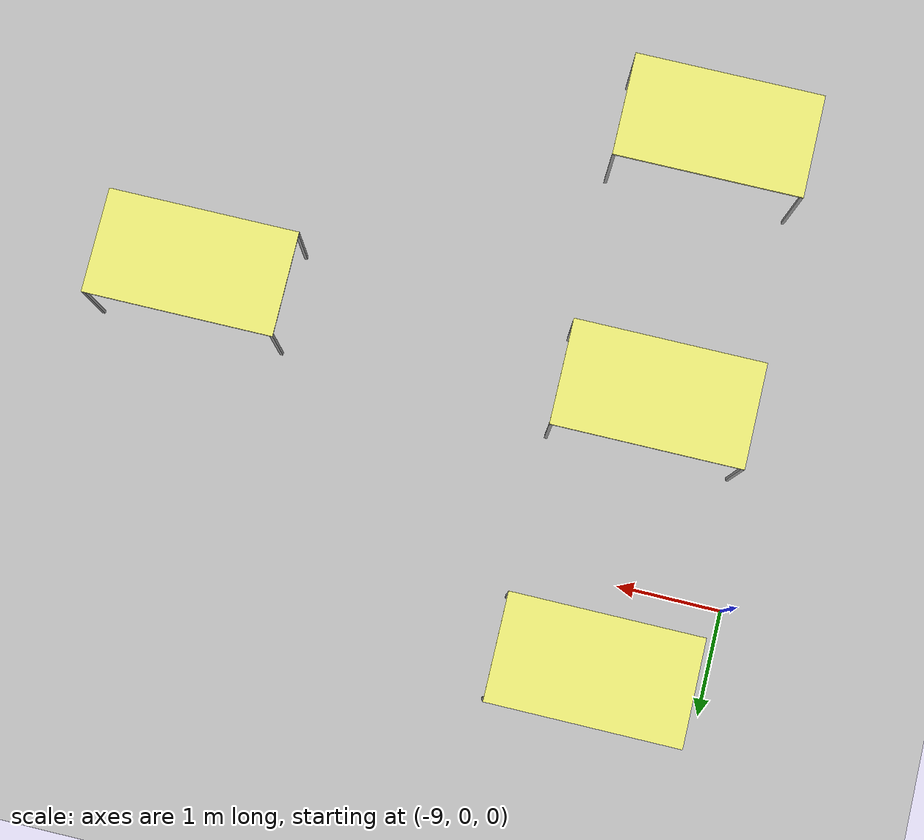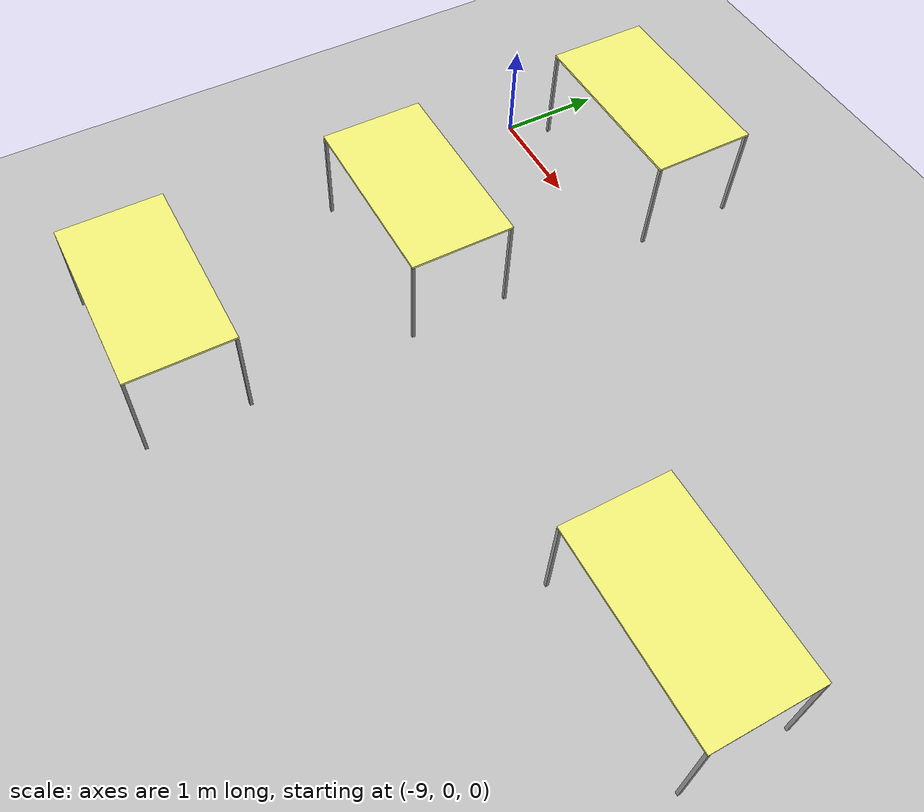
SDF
<sdf version="1.6">
 <world name="default">
  <model name="ground_plane">
   <static>1</static>
   <link name="link">
    <collision name="collision">
     <geometry><plane><normal>0 0 1</normal><size>100 100</size></plane></geometry>
     <surface><friction><ode><mu>100</mu><mu2>50</mu2></ode></friction></surface>
    </collision>
    <visual name="visual">
     <cast_shadows>0</cast_shadows>
     <geometry><plane><normal>0 0 1</normal><size>100 100</size></plane></geometry>
     <material>
      <script><uri>file://media/materials/scripts/gazebo.material</uri><name>Gazebo/Grey</name></script>
     </material>
    </visual>
   </link>
  </model>
  <model name="custom_table">
   <link name="link_0">
    <pose>-1e-06 0 0.4 0 -0 0</pose>
    <inertial>
     <mass>1</mass>
     <inertia>
      <ixx>0.166667</ixx>
      <ixy>0</ixy>
      <ixz>0</ixz>
      <iyy>0.166667</iyy>
      <iyz>0</iyz>
      <izz>0.166667</izz>
     </inertia>
    </inertial>
    <visual name="visual">
     <geometry><box><size>1.8 1 0.02</size></box></geometry>
     <material>
      <lighting>1</lighting>
      <script><uri>file://media/materials/scripts/gazebo.material</uri><name>Gazebo/Grey</name></script>
      <shader type="pixel"><normal_map>__default__</normal_map></shader>
      <ambient>0.4 0.4 0.4 0.5</ambient>
      <diffuse>1 1 0.5 1</diffuse>
      <specular>0.4 0.4 0.4 1</specular>
      <emissive>0 0 0 1</emissive>
     </material>
    </visual>
    <collision name="collision">
     <geometry><box><size>1.8 1 0.02</size></box></geometry>
     <surface>
      <friction>
       <ode><mu>1</mu><mu2>1</mu2><fdir1>0 0 0</fdir1><slip1>0</slip1><slip2>0</slip2></ode>
       <torsional>
        <coefficient>1</coefficient>
        <patch_radius>0</patch_radius>
        <surface_radius>0</surface_radius>
        <use_patch_radius>1</use_patch_radius>
        <ode><slip>0</slip></ode>
       </torsional>
      </friction>
      <bounce><restitution_coefficient>0</restitution_coefficient><threshold>1e+06</threshold></bounce>
      <contact>
       <collide_without_contact>0</collide_without_contact>
       <collide_without_contact_bitmask>1</collide_without_contact_bitmask>
       <collide_bitmask>1</collide_bitmask>
       <ode>
        <soft_cfm>0</soft_cfm>
        <soft_erp>0.2</soft_erp>
        <kp>1e+13</kp>
        <kd>1</kd>
        <max_vel>0.01</max_vel>
        <min_depth>0</min_depth>
       </ode>
       <bullet>
        <split_impulse>1</split_impulse>
        <split_impulse_penetration_threshold>-0.01</split_impulse_penetration_threshold>
        <soft_cfm>0</soft_cfm>
        <soft_erp>0.2</soft_erp>
        <kp>1e+13</kp>
        <kd>1</kd>
       </bullet>
      </contact>
     </surface>
    </collision>
   </link>
   <link name="link_1_clone">
    <pose>0.884999 -0.485 -0.1 0 -0 0</pose>
    <inertial>
     <mass>1</mass>
     <inertia>
      <ixx>0.166667</ixx>
      <ixy>0</ixy>
      <ixz>0</ixz>
      <iyy>0.166667</iyy>
      <iyz>0</iyz>
      <izz>0.166667</izz>
     </inertia>
    </inertial>
    <visual name="visual">
     <geometry><box><size>0.03 0.03 0.98</size></box></geometry>
     <material>
      <lighting>1</lighting>
      <script><uri>file://media/materials/scripts/gazebo.material</uri><name>Gazebo/Grey</name></script>
      <shader type="pixel"><normal_map>__default__</normal_map></shader>
      <ambient>0.3 0.3 0.3 1</ambient>
      <diffuse>0.7 0.7 0.7 1</diffuse>
      <specular>0.01 0.01 0.01 1</specular>
      <emissive>0 0 0 1</emissive>
     </material>
    </visual>
    <collision name="collision">
     <geometry><box><size>0.03 0.03 0.98</size></box></geometry>
     <surface>
      <friction>
       <ode><mu>1</mu><mu2>1</mu2><fdir1>0 0 0</fdir1><slip1>0</slip1><slip2>0</slip2></ode>
       <torsional>
        <coefficient>1</coefficient>
        <patch_radius>0</patch_radius>
        <surface_radius>0</surface_radius>
        <use_patch_radius>1</use_patch_radius>
        <ode><slip>0</slip></ode>
       </torsional>
      </friction>
      <bounce><restitution_coefficient>0</restitution_coefficient><threshold>1e+06</threshold></bounce>
      <contact>
       <collide_without_contact>0</collide_without_contact>
       <collide_without_contact_bitmask>1</collide_without_contact_bitmask>
       <collide_bitmask>1</collide_bitmask>
       <ode>
        <soft_cfm>0</soft_cfm>
        <soft_erp>0.2</soft_erp>
        <kp>1e+13</kp>
        <kd>1</kd>
        <max_vel>0.01</max_vel>
        <min_depth>0</min_depth>
       </ode>
       <bullet>
        <split_impulse>1</split_impulse>
        <split_impulse_penetration_threshold>-0.01</split_impulse_penetration_threshold>
        <soft_cfm>0</soft_cfm>
        <soft_erp>0.2</soft_erp>
        <kp>1e+13</kp>
        <kd>1</kd>
       </bullet>
      </contact>
     </surface>
    </collision>
   </link>
   <link name="link_1_clone_0">
    <pose>-0.885001 0.485 -0.1 0 -0 0</pose>
    <inertial>
     <mass>1</mass>
     <inertia>
      <ixx>0.166667</ixx>
      <ixy>0</ixy>
      <ixz>0</ixz>
      <iyy>0.166667</iyy>
      <iyz>0</iyz>
      <izz>0.166667</izz>
     </inertia>
    </inertial>
    <visual name="visual">
     <geometry><box><size>0.03 0.03 0.98</size></box></geometry>
     <material>
      <lighting>1</lighting>
      <script><uri>file://media/materials/scripts/gazebo.material</uri><name>Gazebo/Grey</name></script>
      <shader type="pixel"><normal_map>__default__</normal_map></shader>
      <ambient>0.3 0.3 0.3 1</ambient>
      <diffuse>0.7 0.7 0.7 1</diffuse>
      <specular>0.01 0.01 0.01 1</specular>
      <emissive>0 0 0 1</emissive>
     </material>
    </visual>
    <collision name="collision">
     <geometry><box><size>0.03 0.03 0.98</size></box></geometry>
     <surface>
      <friction>
       <ode><mu>1</mu><mu2>1</mu2><fdir1>0 0 0</fdir1><slip1>0</slip1><slip2>0</slip2></ode>
       <torsional>
        <coefficient>1</coefficient>
        <patch_radius>0</patch_radius>
        <surface_radius>0</surface_radius>
        <use_patch_radius>1</use_patch_radius>
        <ode><slip>0</slip></ode>
       </torsional>
      </friction>
      <bounce><restitution_coefficient>0</restitution_coefficient><threshold>1e+06</threshold></bounce>
      <contact>
       <collide_without_contact>0</collide_without_contact>
       <collide_without_contact_bitmask>1</collide_without_contact_bitmask>
       <collide_bitmask>1</collide_bitmask>
       <ode>
        <soft_cfm>0</soft_cfm>
        <soft_erp>0.2</soft_erp>
        <kp>1e+13</kp>
        <kd>1</kd>
        <max_vel>0.01</max_vel>
        <min_depth>0</min_depth>
       </ode>
       <bullet>
        <split_impulse>1</split_impulse>
        <split_impulse_penetration_threshold>-0.01</split_impulse_penetration_threshold>
        <soft_cfm>0</soft_cfm>
        <soft_erp>0.2</soft_erp>
        <kp>1e+13</kp>
        <kd>1</kd>
       </bullet>
      </contact>
     </surface>
    </collision>
   </link>
   <link name="link_1_clone_clone">
    <pose>0.884999 0.485 -0.1 0 -0 0</pose>
    <inertial>
     <mass>1</mass>
     <inertia>
      <ixx>0.166667</ixx>
      <ixy>0</ixy>
      <ixz>0</ixz>
      <iyy>0.166667</iyy>
      <iyz>0</iyz>
      <izz>0.166667</izz>
     </inertia>
    </inertial>
    <visual name="visual">
     <geometry><box><size>0.03 0.03 0.98</size></box></geometry>
     <material>
      <lighting>1</lighting>
      <script><uri>file://media/materials/scripts/gazebo.material</uri><name>Gazebo/Grey</name></script>
      <shader type="pixel"><normal_map>__default__</normal_map></shader>
      <ambient>0.3 0.3 0.3 1</ambient>
      <diffuse>0.7 0.7 0.7 1</diffuse>
      <specular>0.01 0.01 0.01 1</specular>
      <emissive>0 0 0 1</emissive>
     </material>
    </visual>
    <collision name="collision">
     <geometry><box><size>0.03 0.03 0.98</size></box></geometry>
     <surface>
      <friction>
       <ode><mu>1</mu><mu2>1</mu2><fdir1>0 0 0</fdir1><slip1>0</slip1><slip2>0</slip2></ode>
       <torsional>
        <coefficient>1</coefficient>
        <patch_radius>0</patch_radius>
        <surface_radius>0</surface_radius>
        <use_patch_radius>1</use_patch_radius>
        <ode><slip>0</slip></ode>
       </torsional>
      </friction>
      <bounce><restitution_coefficient>0</restitution_coefficient><threshold>1e+06</threshold></bounce>
      <contact>
       <collide_without_contact>0</collide_without_contact>
       <collide_without_contact_bitmask>1</collide_without_contact_bitmask>
       <collide_bitmask>1</collide_bitmask>
       <ode>
        <soft_cfm>0</soft_cfm>
        <soft_erp>0.2</soft_erp>
        <kp>1e+13</kp>
        <kd>1</kd>
        <max_vel>0.01</max_vel>
        <min_depth>0</min_depth>
       </ode>
       <bullet>
        <split_impulse>1</split_impulse>
        <split_impulse_penetration_threshold>-0.01</split_impulse_penetration_threshold>
        <soft_cfm>0</soft_cfm>
        <soft_erp>0.2</soft_erp>
        <kp>1e+13</kp>
        <kd>1</kd>
       </bullet>
      </contact>
     </surface>
    </collision>
   </link>
   <link name="link_1_clone_clone_0">
    <pose>-0.885001 -0.485 -0.1 0 -0 0</pose>
    <inertial>
     <mass>1</mass>
     <inertia>
      <ixx>0.166667</ixx>
      <ixy>0</ixy>
      <ixz>0</ixz>
      <iyy>0.166667</iyy>
      <iyz>0</iyz>
      <izz>0.166667</izz>
     </inertia>
    </inertial>
    <visual name="visual">
     <geometry><box><size>0.03 0.03 0.98</size></box></geometry>
     <material>
      <lighting>1</lighting>
      <script><uri>file://media/materials/scripts/gazebo.material</uri><name>Gazebo/Grey</name></script>
      <shader type="pixel"><normal_map>__default__</normal_map></shader>
      <ambient>0.3 0.3 0.3 1</ambient>
      <diffuse>0.7 0.7 0.7 1</diffuse>
      <specular>0.01 0.01 0.01 1</specular>
      <emissive>0 0 0 1</emissive>
     </material>
    </visual>
    <collision name="collision">
     <geometry><box><size>0.03 0.03 0.98</size></box></geometry>
     <surface>
      <friction>
       <ode><mu>1</mu><mu2>1</mu2><fdir1>0 0 0</fdir1><slip1>0</slip1><slip2>0</slip2></ode>
       <torsional>
        <coefficient>1</coefficient>
        <patch_radius>0</patch_radius>
        <surface_radius>0</surface_radius>
        <use_patch_radius>1</use_patch_radius>
        <ode><slip>0</slip></ode>
       </torsional>
      </friction>
      <bounce><restitution_coefficient>0</restitution_coefficient><threshold>1e+06</threshold></bounce>
      <contact>
       <collide_without_contact>0</collide_without_contact>
       <collide_without_contact_bitmask>1</collide_without_contact_bitmask>
       <collide_bitmask>1</collide_bitmask>
       <ode>
        <soft_cfm>0</soft_cfm>
        <soft_erp>0.2</soft_erp>
        <kp>1e+13</kp>
        <kd>1</kd>
        <max_vel>0.01</max_vel>
        <min_depth>0</min_depth>
       </ode>
       <bullet>
        <split_impulse>1</split_impulse>
        <split_impulse_penetration_threshold>-0.01</split_impulse_penetration_threshold>
        <soft_cfm>0</soft_cfm>
        <soft_erp>0.2</soft_erp>
        <kp>1e+13</kp>
        <kd>1</kd>
       </bullet>
      </contact>
     </surface>
    </collision>
   </link>
   <joint name="link_0_JOINT_0" type="fixed">
    <parent>link_0</parent>
    <child>link_1_clone</child>
    <physics>
     <ode><limit><cfm>0</cfm><erp>0.2</erp></limit><suspension><cfm>0</cfm><erp>0.2</erp></suspension></ode>
    </physics>
   </joint>
   <joint name="link_0_JOINT_1" type="fixed">
    <parent>link_0</parent>
    <child>link_1_clone_0</child>
    <physics>
     <ode><limit><cfm>0</cfm><erp>0.2</erp></limit><suspension><cfm>0</cfm><erp>0.2</erp></suspension></ode>
    </physics>
   </joint>
   <joint name="link_0_JOINT_2" type="fixed">
    <parent>link_0</parent>
    <child>link_1_clone_clone</child>
    <physics>
     <ode><limit><cfm>0</cfm><erp>0.2</erp></limit><suspension><cfm>0</cfm><erp>0.2</erp></suspension></ode>
    </physics>
   </joint>
   <joint name="link_0_JOINT_3" type="fixed">
    <parent>link_0</parent>
    <child>link_1_clone_clone_0</child>
    <physics>
     <ode><limit><cfm>0</cfm><erp>0.2</erp></limit><suspension><cfm>0</cfm><erp>0.2</erp></suspension></ode>
    </physics>
   </joint>
   <static>1</static>
   <pose>-7.89321 0.822776 0.6 0 -0 0</pose>
  </model>
  <model name="custom_table_clone">
   <link name="link_0">
    <pose>-1e-06 0 0.4 0 -0 0</pose>
    <inertial>
     <mass>1</mass>
     <inertia>
      <ixx>0.166667</ixx>
      <ixy>0</ixy>
      <ixz>0</ixz>
      <iyy>0.166667</iyy>
      <iyz>0</iyz>
      <izz>0.166667</izz>
     </inertia>
    </inertial>
    <visual name="visual">
     <geometry><box><size>1.8 1 0.02</size></box></geometry>
     <material>
      <lighting>1</lighting>
      <script><uri>file://media/materials/scripts/gazebo.material</uri><name>Gazebo/Grey</name></script>
      <shader type="pixel"><normal_map>__default__</normal_map></shader>
      <ambient>0.4 0.4 0.4 0.5</ambient>
      <diffuse>1 1 0.5 1</diffuse>
      <specular>0.4 0.4 0.4 1</specular>
      <emissive>0 0 0 1</emissive>
     </material>
    </visual>
    <collision name="collision">
     <geometry><box><size>1.8 1 0.02</size></box></geometry>
     <surface>
      <friction>
       <ode><mu>1</mu><mu2>1</mu2><fdir1>0 0 0</fdir1><slip1>0</slip1><slip2>0</slip2></ode>
       <torsional>
        <coefficient>1</coefficient>
        <patch_radius>0</patch_radius>
        <surface_radius>0</surface_radius>
        <use_patch_radius>1</use_patch_radius>
        <ode><slip>0</slip></ode>
       </torsional>
      </friction>
      <bounce><restitution_coefficient>0</restitution_coefficient><threshold>1e+06</threshold></bounce>
      <contact>
       <collide_without_contact>0</collide_without_contact>
       <collide_without_contact_bitmask>1</collide_without_contact_bitmask>
       <collide_bitmask>1</collide_bitmask>
       <ode>
        <soft_cfm>0</soft_cfm>
        <soft_erp>0.2</soft_erp>
        <kp>1e+13</kp>
        <kd>1</kd>
        <max_vel>0.01</max_vel>
        <min_depth>0</min_depth>
       </ode>
       <bullet>
        <split_impulse>1</split_impulse>
        <split_impulse_penetration_threshold>-0.01</split_impulse_penetration_threshold>
        <soft_cfm>0</soft_cfm>
        <soft_erp>0.2</soft_erp>
        <kp>1e+13</kp>
        <kd>1</kd>
       </bullet>
      </contact>
     </surface>
    </collision>
   </link>
   <link name="link_1_clone">
    <pose>0.884999 -0.485 -0.1 0 -0 0</pose>
    <inertial>
     <mass>1</mass>
     <inertia>
      <ixx>0.166667</ixx>
      <ixy>0</ixy>
      <ixz>0</ixz>
      <iyy>0.166667</iyy>
      <iyz>0</iyz>
      <izz>0.166667</izz>
     </inertia>
    </inertial>
    <visual name="visual">
     <geometry><box><size>0.03 0.03 0.98</size></box></geometry>
     <material>
      <lighting>1</lighting>
      <script><uri>file://media/materials/scripts/gazebo.material</uri><name>Gazebo/Grey</name></script>
      <shader type="pixel"><normal_map>__default__</normal_map></shader>
      <ambient>0.3 0.3 0.3 1</ambient>
      <diffuse>0.7 0.7 0.7 1</diffuse>
      <specular>0.01 0.01 0.01 1</specular>
      <emissive>0 0 0 1</emissive>
     </material>
    </visual>
    <collision name="collision">
     <geometry><box><size>0.03 0.03 0.98</size></box></geometry>
     <surface>
      <friction>
       <ode><mu>1</mu><mu2>1</mu2><fdir1>0 0 0</fdir1><slip1>0</slip1><slip2>0</slip2></ode>
       <torsional>
        <coefficient>1</coefficient>
        <patch_radius>0</patch_radius>
        <surface_radius>0</surface_radius>
        <use_patch_radius>1</use_patch_radius>
        <ode><slip>0</slip></ode>
       </torsional>
      </friction>
      <bounce><restitution_coefficient>0</restitution_coefficient><threshold>1e+06</threshold></bounce>
      <contact>
       <collide_without_contact>0</collide_without_contact>
       <collide_without_contact_bitmask>1</collide_without_contact_bitmask>
       <collide_bitmask>1</collide_bitmask>
       <ode>
        <soft_cfm>0</soft_cfm>
        <soft_erp>0.2</soft_erp>
        <kp>1e+13</kp>
        <kd>1</kd>
        <max_vel>0.01</max_vel>
        <min_depth>0</min_depth>
       </ode>
       <bullet>
        <split_impulse>1</split_impulse>
        <split_impulse_penetration_threshold>-0.01</split_impulse_penetration_threshold>
        <soft_cfm>0</soft_cfm>
        <soft_erp>0.2</soft_erp>
        <kp>1e+13</kp>
        <kd>1</kd>
       </bullet>
      </contact>
     </surface>
    </collision>
   </link>
   <link name="link_1_clone_0">
    <pose>-0.885001 0.485 -0.1 0 -0 0</pose>
    <inertial>
     <mass>1</mass>
     <inertia>
      <ixx>0.166667</ixx>
      <ixy>0</ixy>
      <ixz>0</ixz>
      <iyy>0.166667</iyy>
      <iyz>0</iyz>
      <izz>0.166667</izz>
     </inertia>
    </inertial>
    <visual name="visual">
     <geometry><box><size>0.03 0.03 0.98</size></box></geometry>
     <material>
      <lighting>1</lighting>
      <script><uri>file://media/materials/scripts/gazebo.material</uri><name>Gazebo/Grey</name></script>
      <shader type="pixel"><normal_map>__default__</normal_map></shader>
      <ambient>0.3 0.3 0.3 1</ambient>
      <diffuse>0.7 0.7 0.7 1</diffuse>
      <specular>0.01 0.01 0.01 1</specular>
      <emissive>0 0 0 1</emissive>
     </material>
    </visual>
    <collision name="collision">
     <geometry><box><size>0.03 0.03 0.98</size></box></geometry>
     <surface>
      <friction>
       <ode><mu>1</mu><mu2>1</mu2><fdir1>0 0 0</fdir1><slip1>0</slip1><slip2>0</slip2></ode>
       <torsional>
        <coefficient>1</coefficient>
        <patch_radius>0</patch_radius>
        <surface_radius>0</surface_radius>
        <use_patch_radius>1</use_patch_radius>
        <ode><slip>0</slip></ode>
       </torsional>
      </friction>
      <bounce><restitution_coefficient>0</restitution_coefficient><threshold>1e+06</threshold></bounce>
      <contact>
       <collide_without_contact>0</collide_without_contact>
       <collide_without_contact_bitmask>1</collide_without_contact_bitmask>
       <collide_bitmask>1</collide_bitmask>
       <ode>
        <soft_cfm>0</soft_cfm>
        <soft_erp>0.2</soft_erp>
        <kp>1e+13</kp>
        <kd>1</kd>
        <max_vel>0.01</max_vel>
        <min_depth>0</min_depth>
       </ode>
       <bullet>
        <split_impulse>1</split_impulse>
        <split_impulse_penetration_threshold>-0.01</split_impulse_penetration_threshold>
        <soft_cfm>0</soft_cfm>
        <soft_erp>0.2</soft_erp>
        <kp>1e+13</kp>
        <kd>1</kd>
       </bullet>
      </contact>
     </surface>
    </collision>
   </link>
   <link name="link_1_clone_clone">
    <pose>0.884999 0.485 -0.1 0 -0 0</pose>
    <inertial>
     <mass>1</mass>
     <inertia>
      <ixx>0.166667</ixx>
      <ixy>0</ixy>
      <ixz>0</ixz>
      <iyy>0.166667</iyy>
      <iyz>0</iyz>
      <izz>0.166667</izz>
     </inertia>
    </inertial>
    <visual name="visual">
     <geometry><box><size>0.03 0.03 0.98</size></box></geometry>
     <material>
      <lighting>1</lighting>
      <script><uri>file://media/materials/scripts/gazebo.material</uri><name>Gazebo/Grey</name></script>
      <shader type="pixel"><normal_map>__default__</normal_map></shader>
      <ambient>0.3 0.3 0.3 1</ambient>
      <diffuse>0.7 0.7 0.7 1</diffuse>
      <specular>0.01 0.01 0.01 1</specular>
      <emissive>0 0 0 1</emissive>
     </material>
    </visual>
    <collision name="collision">
     <geometry><box><size>0.03 0.03 0.98</size></box></geometry>
     <surface>
      <friction>
       <ode><mu>1</mu><mu2>1</mu2><fdir1>0 0 0</fdir1><slip1>0</slip1><slip2>0</slip2></ode>
       <torsional>
        <coefficient>1</coefficient>
        <patch_radius>0</patch_radius>
        <surface_radius>0</surface_radius>
        <use_patch_radius>1</use_patch_radius>
        <ode><slip>0</slip></ode>
       </torsional>
      </friction>
      <bounce><restitution_coefficient>0</restitution_coefficient><threshold>1e+06</threshold></bounce>
      <contact>
       <collide_without_contact>0</collide_without_contact>
       <collide_without_contact_bitmask>1</collide_without_contact_bitmask>
       <collide_bitmask>1</collide_bitmask>
       <ode>
        <soft_cfm>0</soft_cfm>
        <soft_erp>0.2</soft_erp>
        <kp>1e+13</kp>
        <kd>1</kd>
        <max_vel>0.01</max_vel>
        <min_depth>0</min_depth>
       </ode>
       <bullet>
        <split_impulse>1</split_impulse>
        <split_impulse_penetration_threshold>-0.01</split_impulse_penetration_threshold>
        <soft_cfm>0</soft_cfm>
        <soft_erp>0.2</soft_erp>
        <kp>1e+13</kp>
        <kd>1</kd>
       </bullet>
      </contact>
     </surface>
    </collision>
   </link>
   <link name="link_1_clone_clone_0">
    <pose>-0.885001 -0.485 -0.1 0 -0 0</pose>
    <inertial>
     <mass>1</mass>
     <inertia>
      <ixx>0.166667</ixx>
      <ixy>0</ixy>
      <ixz>0</ixz>
      <iyy>0.166667</iyy>
      <iyz>0</iyz>
      <izz>0.166667</izz>
     </inertia>
    </inertial>
    <visual name="visual">
     <geometry><box><size>0.03 0.03 0.98</size></box></geometry>
     <material>
      <lighting>1</lighting>
      <script><uri>file://media/materials/scripts/gazebo.material</uri><name>Gazebo/Grey</name></script>
      <shader type="pixel"><normal_map>__default__</normal_map></shader>
      <ambient>0.3 0.3 0.3 1</ambient>
      <diffuse>0.7 0.7 0.7 1</diffuse>
      <specular>0.01 0.01 0.01 1</specular>
      <emissive>0 0 0 1</emissive>
     </material>
    </visual>
    <collision name="collision">
     <geometry><box><size>0.03 0.03 0.98</size></box></geometry>
     <surface>
      <friction>
       <ode><mu>1</mu><mu2>1</mu2><fdir1>0 0 0</fdir1><slip1>0</slip1><slip2>0</slip2></ode>
       <torsional>
        <coefficient>1</coefficient>
        <patch_radius>0</patch_radius>
        <surface_radius>0</surface_radius>
        <use_patch_radius>1</use_patch_radius>
        <ode><slip>0</slip></ode>
       </torsional>
      </friction>
      <bounce><restitution_coefficient>0</restitution_coefficient><threshold>1e+06</threshold></bounce>
      <contact>
       <collide_without_contact>0</collide_without_contact>
       <collide_without_contact_bitmask>1</collide_without_contact_bitmask>
       <collide_bitmask>1</collide_bitmask>
       <ode>
        <soft_cfm>0</soft_cfm>
        <soft_erp>0.2</soft_erp>
        <kp>1e+13</kp>
        <kd>1</kd>
        <max_vel>0.01</max_vel>
        <min_depth>0</min_depth>
       </ode>
       <bullet>
        <split_impulse>1</split_impulse>
        <split_impulse_penetration_threshold>-0.01</split_impulse_penetration_threshold>
        <soft_cfm>0</soft_cfm>
        <soft_erp>0.2</soft_erp>
        <kp>1e+13</kp>
        <kd>1</kd>
       </bullet>
      </contact>
     </surface>
    </collision>
   </link>
   <joint name="link_0_JOINT_0" type="fixed">
    <parent>link_0</parent>
    <child>link_1_clone</child>
    <physics>
     <ode><limit><cfm>0</cfm><erp>0.2</erp></limit><suspension><cfm>0</cfm><erp>0.2</erp></suspension></ode>
    </physics>
   </joint>
   <joint name="link_0_JOINT_1" type="fixed">
    <parent>link_0</parent>
    <child>link_1_clone_0</child>
    <physics>
     <ode><limit><cfm>0</cfm><erp>0.2</erp></limit><suspension><cfm>0</cfm><erp>0.2</erp></suspension></ode>
    </physics>
   </joint>
   <joint name="link_0_JOINT_2" type="fixed">
    <parent>link_0</parent>
    <child>link_1_clone_clone</child>
    <physics>
     <ode><limit><cfm>0</cfm><erp>0.2</erp></limit><suspension><cfm>0</cfm><erp>0.2</erp></suspension></ode>
    </physics>
   </joint>
   <joint name="link_0_JOINT_3" type="fixed">
    <parent>link_0</parent>
    <child>link_1_clone_clone_0</child>
    <physics>
     <ode><limit><cfm>0</cfm><erp>0.2</erp></limit><suspension><cfm>0</cfm><erp>0.2</erp></suspension></ode>
    </physics>
   </joint>
   <static>1</static>
   <pose>-7.90954 -1.71898 0.6 0 -0 0</pose>
  </model>
  <model name="custom_table_clone_0">
   <link name="link_0">
    <pose>-1e-06 0 0.4 0 -0 0</pose>
    <inertial>
     <mass>1</mass>
     <inertia>
      <ixx>0.166667</ixx>
      <ixy>0</ixy>
      <ixz>0</ixz>
      <iyy>0.166667</iyy>
      <iyz>0</iyz>
      <izz>0.166667</izz>
     </inertia>
    </inertial>
    <visual name="visual">
     <geometry><box><size>1.8 1 0.02</size></box></geometry>
     <material>
      <lighting>1</lighting>
      <script><uri>file://media/materials/scripts/gazebo.material</uri><name>Gazebo/Grey</name></script>
      <shader type="pixel"><normal_map>__default__</normal_map></shader>
      <ambient>0.4 0.4 0.4 0.5</ambient>
      <diffuse>1 1 0.5 1</diffuse>
      <specular>0.4 0.4 0.4 1</specular>
      <emissive>0 0 0 1</emissive>
     </material>
    </visual>
    <collision name="collision">
     <geometry><box><size>1.8 1 0.02</size></box></geometry>
     <surface>
      <friction>
       <ode><mu>1</mu><mu2>1</mu2><fdir1>0 0 0</fdir1><slip1>0</slip1><slip2>0</slip2></ode>
       <torsional>
        <coefficient>1</coefficient>
        <patch_radius>0</patch_radius>
        <surface_radius>0</surface_radius>
        <use_patch_radius>1</use_patch_radius>
        <ode><slip>0</slip></ode>
       </torsional>
      </friction>
      <bounce><restitution_coefficient>0</restitution_coefficient><threshold>1e+06</threshold></bounce>
      <contact>
       <collide_without_contact>0</collide_without_contact>
       <collide_without_contact_bitmask>1</collide_without_contact_bitmask>
       <collide_bitmask>1</collide_bitmask>
       <ode>
        <soft_cfm>0</soft_cfm>
        <soft_erp>0.2</soft_erp>
        <kp>1e+13</kp>
        <kd>1</kd>
        <max_vel>0.01</max_vel>
        <min_depth>0</min_depth>
       </ode>
       <bullet>
        <split_impulse>1</split_impulse>
        <split_impulse_penetration_threshold>-0.01</split_impulse_penetration_threshold>
        <soft_cfm>0</soft_cfm>
        <soft_erp>0.2</soft_erp>
        <kp>1e+13</kp>
        <kd>1</kd>
       </bullet>
      </contact>
     </surface>
    </collision>
   </link>
   <link name="link_1_clone">
    <pose>0.884999 -0.485 -0.1 0 -0 0</pose>
    <inertial>
     <mass>1</mass>
     <inertia>
      <ixx>0.166667</ixx>
      <ixy>0</ixy>
      <ixz>0</ixz>
      <iyy>0.166667</iyy>
      <iyz>0</iyz>
      <izz>0.166667</izz>
     </inertia>
    </inertial>
    <visual name="visual">
     <geometry><box><size>0.03 0.03 0.98</size></box></geometry>
     <material>
      <lighting>1</lighting>
      <script><uri>file://media/materials/scripts/gazebo.material</uri><name>Gazebo/Grey</name></script>
      <shader type="pixel"><normal_map>__default__</normal_map></shader>
      <ambient>0.3 0.3 0.3 1</ambient>
      <diffuse>0.7 0.7 0.7 1</diffuse>
      <specular>0.01 0.01 0.01 1</specular>
      <emissive>0 0 0 1</emissive>
     </material>
    </visual>
    <collision name="collision">
     <geometry><box><size>0.03 0.03 0.98</size></box></geometry>
     <surface>
      <friction>
       <ode><mu>1</mu><mu2>1</mu2><fdir1>0 0 0</fdir1><slip1>0</slip1><slip2>0</slip2></ode>
       <torsional>
        <coefficient>1</coefficient>
        <patch_radius>0</patch_radius>
        <surface_radius>0</surface_radius>
        <use_patch_radius>1</use_patch_radius>
        <ode><slip>0</slip></ode>
       </torsional>
      </friction>
      <bounce><restitution_coefficient>0</restitution_coefficient><threshold>1e+06</threshold></bounce>
      <contact>
       <collide_without_contact>0</collide_without_contact>
       <collide_without_contact_bitmask>1</collide_without_contact_bitmask>
       <collide_bitmask>1</collide_bitmask>
       <ode>
        <soft_cfm>0</soft_cfm>
        <soft_erp>0.2</soft_erp>
        <kp>1e+13</kp>
        <kd>1</kd>
        <max_vel>0.01</max_vel>
        <min_depth>0</min_depth>
       </ode>
       <bullet>
        <split_impulse>1</split_impulse>
        <split_impulse_penetration_threshold>-0.01</split_impulse_penetration_threshold>
        <soft_cfm>0</soft_cfm>
        <soft_erp>0.2</soft_erp>
        <kp>1e+13</kp>
        <kd>1</kd>
       </bullet>
      </contact>
     </surface>
    </collision>
   </link>
   <link name="link_1_clone_0">
    <pose>-0.885001 0.485 -0.1 0 -0 0</pose>
    <inertial>
     <mass>1</mass>
     <inertia>
      <ixx>0.166667</ixx>
      <ixy>0</ixy>
      <ixz>0</ixz>
      <iyy>0.166667</iyy>
      <iyz>0</iyz>
      <izz>0.166667</izz>
     </inertia>
    </inertial>
    <visual name="visual">
     <geometry><box><size>0.03 0.03 0.98</size></box></geometry>
     <material>
      <lighting>1</lighting>
      <script><uri>file://media/materials/scripts/gazebo.material</uri><name>Gazebo/Grey</name></script>
      <shader type="pixel"><normal_map>__default__</normal_map></shader>
      <ambient>0.3 0.3 0.3 1</ambient>
      <diffuse>0.7 0.7 0.7 1</diffuse>
      <specular>0.01 0.01 0.01 1</specular>
      <emissive>0 0 0 1</emissive>
     </material>
    </visual>
    <collision name="collision">
     <geometry><box><size>0.03 0.03 0.98</size></box></geometry>
     <surface>
      <friction>
       <ode><mu>1</mu><mu2>1</mu2><fdir1>0 0 0</fdir1><slip1>0</slip1><slip2>0</slip2></ode>
       <torsional>
        <coefficient>1</coefficient>
        <patch_radius>0</patch_radius>
        <surface_radius>0</surface_radius>
        <use_patch_radius>1</use_patch_radius>
        <ode><slip>0</slip></ode>
       </torsional>
      </friction>
      <bounce><restitution_coefficient>0</restitution_coefficient><threshold>1e+06</threshold></bounce>
      <contact>
       <collide_without_contact>0</collide_without_contact>
       <collide_without_contact_bitmask>1</collide_without_contact_bitmask>
       <collide_bitmask>1</collide_bitmask>
       <ode>
        <soft_cfm>0</soft_cfm>
        <soft_erp>0.2</soft_erp>
        <kp>1e+13</kp>
        <kd>1</kd>
        <max_vel>0.01</max_vel>
        <min_depth>0</min_depth>
       </ode>
       <bullet>
        <split_impulse>1</split_impulse>
        <split_impulse_penetration_threshold>-0.01</split_impulse_penetration_threshold>
        <soft_cfm>0</soft_cfm>
        <soft_erp>0.2</soft_erp>
        <kp>1e+13</kp>
        <kd>1</kd>
       </bullet>
      </contact>
     </surface>
    </collision>
   </link>
   <link name="link_1_clone_clone">
    <pose>0.884999 0.485 -0.1 0 -0 0</pose>
    <inertial>
     <mass>1</mass>
     <inertia>
      <ixx>0.166667</ixx>
      <ixy>0</ixy>
      <ixz>0</ixz>
      <iyy>0.166667</iyy>
      <iyz>0</iyz>
      <izz>0.166667</izz>
     </inertia>
    </inertial>
    <visual name="visual">
     <geometry><box><size>0.03 0.03 0.98</size></box></geometry>
     <material>
      <lighting>1</lighting>
      <script><uri>file://media/materials/scripts/gazebo.material</uri><name>Gazebo/Grey</name></script>
      <shader type="pixel"><normal_map>__default__</normal_map></shader>
      <ambient>0.3 0.3 0.3 1</ambient>
      <diffuse>0.7 0.7 0.7 1</diffuse>
      <specular>0.01 0.01 0.01 1</specular>
      <emissive>0 0 0 1</emissive>
     </material>
    </visual>
    <collision name="collision">
     <geometry><box><size>0.03 0.03 0.98</size></box></geometry>
     <surface>
      <friction>
       <ode><mu>1</mu><mu2>1</mu2><fdir1>0 0 0</fdir1><slip1>0</slip1><slip2>0</slip2></ode>
       <torsional>
        <coefficient>1</coefficient>
        <patch_radius>0</patch_radius>
        <surface_radius>0</surface_radius>
        <use_patch_radius>1</use_patch_radius>
        <ode><slip>0</slip></ode>
       </torsional>
      </friction>
      <bounce><restitution_coefficient>0</restitution_coefficient><threshold>1e+06</threshold></bounce>
      <contact>
       <collide_without_contact>0</collide_without_contact>
       <collide_without_contact_bitmask>1</collide_without_contact_bitmask>
       <collide_bitmask>1</collide_bitmask>
       <ode>
        <soft_cfm>0</soft_cfm>
        <soft_erp>0.2</soft_erp>
        <kp>1e+13</kp>
        <kd>1</kd>
        <max_vel>0.01</max_vel>
        <min_depth>0</min_depth>
       </ode>
       <bullet>
        <split_impulse>1</split_impulse>
        <split_impulse_penetration_threshold>-0.01</split_impulse_penetration_threshold>
        <soft_cfm>0</soft_cfm>
        <soft_erp>0.2</soft_erp>
        <kp>1e+13</kp>
        <kd>1</kd>
       </bullet>
      </contact>
     </surface>
    </collision>
   </link>
   <link name="link_1_clone_clone_0">
    <pose>-0.885001 -0.485 -0.1 0 -0 0</pose>
    <inertial>
     <mass>1</mass>
     <inertia>
      <ixx>0.166667</ixx>
      <ixy>0</ixy>
      <ixz>0</ixz>
      <iyy>0.166667</iyy>
      <iyz>0</iyz>
      <izz>0.166667</izz>
     </inertia>
    </inertial>
    <visual name="visual">
     <geometry><box><size>0.03 0.03 0.98</size></box></geometry>
     <material>
      <lighting>1</lighting>
      <script><uri>file://media/materials/scripts/gazebo.material</uri><name>Gazebo/Grey</name></script>
      <shader type="pixel"><normal_map>__default__</normal_map></shader>
      <ambient>0.3 0.3 0.3 1</ambient>
      <diffuse>0.7 0.7 0.7 1</diffuse>
      <specular>0.01 0.01 0.01 1</specular>
      <emissive>0 0 0 1</emissive>
     </material>
    </visual>
    <collision name="collision">
     <geometry><box><size>0.03 0.03 0.98</size></box></geometry>
     <surface>
      <friction>
       <ode><mu>1</mu><mu2>1</mu2><fdir1>0 0 0</fdir1><slip1>0</slip1><slip2>0</slip2></ode>
       <torsional>
        <coefficient>1</coefficient>
        <patch_radius>0</patch_radius>
        <surface_radius>0</surface_radius>
        <use_patch_radius>1</use_patch_radius>
        <ode><slip>0</slip></ode>
       </torsional>
      </friction>
      <bounce><restitution_coefficient>0</restitution_coefficient><threshold>1e+06</threshold></bounce>
      <contact>
       <collide_without_contact>0</collide_without_contact>
       <collide_without_contact_bitmask>1</collide_without_contact_bitmask>
       <collide_bitmask>1</collide_bitmask>
       <ode>
        <soft_cfm>0</soft_cfm>
        <soft_erp>0.2</soft_erp>
        <kp>1e+13</kp>
        <kd>1</kd>
        <max_vel>0.01</max_vel>
        <min_depth>0</min_depth>
       </ode>
       <bullet>
        <split_impulse>1</split_impulse>
        <split_impulse_penetration_threshold>-0.01</split_impulse_penetration_threshold>
        <soft_cfm>0</soft_cfm>
        <soft_erp>0.2</soft_erp>
        <kp>1e+13</kp>
        <kd>1</kd>
       </bullet>
      </contact>
     </surface>
    </collision>
   </link>
   <joint name="link_0_JOINT_0" type="fixed">
    <parent>link_0</parent>
    <child>link_1_clone</child>
    <physics>
     <ode><limit><cfm>0</cfm><erp>0.2</erp></limit><suspension><cfm>0</cfm><erp>0.2</erp></suspension></ode>
    </physics>
   </joint>
   <joint name="link_0_JOINT_1" type="fixed">
    <parent>link_0</parent>
    <child>link_1_clone_0</child>
    <physics>
     <ode><limit><cfm>0</cfm><erp>0.2</erp></limit><suspension><cfm>0</cfm><erp>0.2</erp></suspension></ode>
    </physics>
   </joint>
   <joint name="link_0_JOINT_2" type="fixed">
    <parent>link_0</parent>
    <child>link_1_clone_clone</child>
    <physics>
     <ode><limit><cfm>0</cfm><erp>0.2</erp></limit><suspension><cfm>0</cfm><erp>0.2</erp></suspension></ode>
    </physics>
   </joint>
   <joint name="link_0_JOINT_3" type="fixed">
    <parent>link_0</parent>
    <child>link_1_clone_clone_0</child>
    <physics>
     <ode><limit><cfm>0</cfm><erp>0.2</erp></limit><suspension><cfm>0</cfm><erp>0.2</erp></suspension></ode>
    </physics>
   </joint>
   <static>1</static>
   <pose>-7.91071 -4.30119 0.6 0 -0 0</pose>
  </model>
  <model name="custom_table_clone_3">
   <link name="link_0">
    <pose>-1e-06 0 0.4 0 -0 0</pose>
    <inertial>
     <mass>1</mass>
     <inertia>
      <ixx>0.166667</ixx>
      <ixy>0</ixy>
      <ixz>0</ixz>
      <iyy>0.166667</iyy>
      <iyz>0</iyz>
      <izz>0.166667</izz>
     </inertia>
    </inertial>
    <visual name="visual">
     <geometry><box><size>1.8 1 0.02</size></box></geometry>
     <material>
      <lighting>1</lighting>
      <script><uri>file://media/materials/scripts/gazebo.material</uri><name>Gazebo/Grey</name></script>
      <shader type="pixel"><normal_map>__default__</normal_map></shader>
      <ambient>0.4 0.4 0.4 0.5</ambient>
      <diffuse>1 1 0.5 1</diffuse>
      <specular>0.4 0.4 0.4 1</specular>
      <emissive>0 0 0 1</emissive>
     </material>
    </visual>
    <collision name="collision">
     <geometry><box><size>1.8 1 0.02</size></box></geometry>
     <surface>
      <friction>
       <ode><mu>1</mu><mu2>1</mu2><fdir1>0 0 0</fdir1><slip1>0</slip1><slip2>0</slip2></ode>
       <torsional>
        <coefficient>1</coefficient>
        <patch_radius>0</patch_radius>
        <surface_radius>0</surface_radius>
        <use_patch_radius>1</use_patch_radius>
        <ode><slip>0</slip></ode>
       </torsional>
      </friction>
      <bounce><restitution_coefficient>0</restitution_coefficient><threshold>1e+06</threshold></bounce>
      <contact>
       <collide_without_contact>0</collide_without_contact>
       <collide_without_contact_bitmask>1</collide_without_contact_bitmask>
       <collide_bitmask>1</collide_bitmask>
       <ode>
        <soft_cfm>0</soft_cfm>
        <soft_erp>0.2</soft_erp>
        <kp>1e+13</kp>
        <kd>1</kd>
        <max_vel>0.01</max_vel>
        <min_depth>0</min_depth>
       </ode>
       <bullet>
        <split_impulse>1</split_impulse>
        <split_impulse_penetration_threshold>-0.01</split_impulse_penetration_threshold>
        <soft_cfm>0</soft_cfm>
        <soft_erp>0.2</soft_erp>
        <kp>1e+13</kp>
        <kd>1</kd>
       </bullet>
      </contact>
     </surface>
    </collision>
   </link>
   <link name="link_1_clone">
    <pose>0.884999 -0.485 -0.1 0 -0 0</pose>
    <inertial>
     <mass>1</mass>
     <inertia>
      <ixx>0.166667</ixx>
      <ixy>0</ixy>
      <ixz>0</ixz>
      <iyy>0.166667</iyy>
      <iyz>0</iyz>
      <izz>0.166667</izz>
     </inertia>
    </inertial>
    <visual name="visual">
     <geometry><box><size>0.03 0.03 0.98</size></box></geometry>
     <material>
      <lighting>1</lighting>
      <script><uri>file://media/materials/scripts/gazebo.material</uri><name>Gazebo/Grey</name></script>
      <shader type="pixel"><normal_map>__default__</normal_map></shader>
      <ambient>0.3 0.3 0.3 1</ambient>
      <diffuse>0.7 0.7 0.7 1</diffuse>
      <specular>0.01 0.01 0.01 1</specular>
      <emissive>0 0 0 1</emissive>
     </material>
    </visual>
    <collision name="collision">
     <geometry><box><size>0.03 0.03 0.98</size></box></geometry>
     <surface>
      <friction>
       <ode><mu>1</mu><mu2>1</mu2><fdir1>0 0 0</fdir1><slip1>0</slip1><slip2>0</slip2></ode>
       <torsional>
        <coefficient>1</coefficient>
        <patch_radius>0</patch_radius>
        <surface_radius>0</surface_radius>
        <use_patch_radius>1</use_patch_radius>
        <ode><slip>0</slip></ode>
       </torsional>
      </friction>
      <bounce><restitution_coefficient>0</restitution_coefficient><threshold>1e+06</threshold></bounce>
      <contact>
       <collide_without_contact>0</collide_without_contact>
       <collide_without_contact_bitmask>1</collide_without_contact_bitmask>
       <collide_bitmask>1</collide_bitmask>
       <ode>
        <soft_cfm>0</soft_cfm>
        <soft_erp>0.2</soft_erp>
        <kp>1e+13</kp>
        <kd>1</kd>
        <max_vel>0.01</max_vel>
        <min_depth>0</min_depth>
       </ode>
       <bullet>
        <split_impulse>1</split_impulse>
        <split_impulse_penetration_threshold>-0.01</split_impulse_penetration_threshold>
        <soft_cfm>0</soft_cfm>
        <soft_erp>0.2</soft_erp>
        <kp>1e+13</kp>
        <kd>1</kd>
       </bullet>
      </contact>
     </surface>
    </collision>
   </link>
   <link name="link_1_clone_0">
    <pose>-0.885001 0.485 -0.1 0 -0 0</pose>
    <inertial>
     <mass>1</mass>
     <inertia>
      <ixx>0.166667</ixx>
      <ixy>0</ixy>
      <ixz>0</ixz>
      <iyy>0.166667</iyy>
      <iyz>0</iyz>
      <izz>0.166667</izz>
     </inertia>
    </inertial>
    <visual name="visual">
     <geometry><box><size>0.03 0.03 0.98</size></box></geometry>
     <material>
      <lighting>1</lighting>
      <script><uri>file://media/materials/scripts/gazebo.material</uri><name>Gazebo/Grey</name></script>
      <shader type="pixel"><normal_map>__default__</normal_map></shader>
      <ambient>0.3 0.3 0.3 1</ambient>
      <diffuse>0.7 0.7 0.7 1</diffuse>
      <specular>0.01 0.01 0.01 1</specular>
      <emissive>0 0 0 1</emissive>
     </material>
    </visual>
    <collision name="collision">
     <geometry><box><size>0.03 0.03 0.98</size></box></geometry>
     <surface>
      <friction>
       <ode><mu>1</mu><mu2>1</mu2><fdir1>0 0 0</fdir1><slip1>0</slip1><slip2>0</slip2></ode>
       <torsional>
        <coefficient>1</coefficient>
        <patch_radius>0</patch_radius>
        <surface_radius>0</surface_radius>
        <use_patch_radius>1</use_patch_radius>
        <ode><slip>0</slip></ode>
       </torsional>
      </friction>
      <bounce><restitution_coefficient>0</restitution_coefficient><threshold>1e+06</threshold></bounce>
      <contact>
       <collide_without_contact>0</collide_without_contact>
       <collide_without_contact_bitmask>1</collide_without_contact_bitmask>
       <collide_bitmask>1</collide_bitmask>
       <ode>
        <soft_cfm>0</soft_cfm>
        <soft_erp>0.2</soft_erp>
        <kp>1e+13</kp>
        <kd>1</kd>
        <max_vel>0.01</max_vel>
        <min_depth>0</min_depth>
       </ode>
       <bullet>
        <split_impulse>1</split_impulse>
        <split_impulse_penetration_threshold>-0.01</split_impulse_penetration_threshold>
        <soft_cfm>0</soft_cfm>
        <soft_erp>0.2</soft_erp>
        <kp>1e+13</kp>
        <kd>1</kd>
       </bullet>
      </contact>
     </surface>
    </collision>
   </link>
   <link name="link_1_clone_clone">
    <pose>0.884999 0.485 -0.1 0 -0 0</pose>
    <inertial>
     <mass>1</mass>
     <inertia>
      <ixx>0.166667</ixx>
      <ixy>0</ixy>
      <ixz>0</ixz>
      <iyy>0.166667</iyy>
      <iyz>0</iyz>
      <izz>0.166667</izz>
     </inertia>
    </inertial>
    <visual name="visual">
     <geometry><box><size>0.03 0.03 0.98</size></box></geometry>
     <material>
      <lighting>1</lighting>
      <script><uri>file://media/materials/scripts/gazebo.material</uri><name>Gazebo/Grey</name></script>
      <shader type="pixel"><normal_map>__default__</normal_map></shader>
      <ambient>0.3 0.3 0.3 1</ambient>
      <diffuse>0.7 0.7 0.7 1</diffuse>
      <specular>0.01 0.01 0.01 1</specular>
      <emissive>0 0 0 1</emissive>
     </material>
    </visual>
    <collision name="collision">
     <geometry><box><size>0.03 0.03 0.98</size></box></geometry>
     <surface>
      <friction>
       <ode><mu>1</mu><mu2>1</mu2><fdir1>0 0 0</fdir1><slip1>0</slip1><slip2>0</slip2></ode>
       <torsional>
        <coefficient>1</coefficient>
        <patch_radius>0</patch_radius>
        <surface_radius>0</surface_radius>
        <use_patch_radius>1</use_patch_radius>
        <ode><slip>0</slip></ode>
       </torsional>
      </friction>
      <bounce><restitution_coefficient>0</restitution_coefficient><threshold>1e+06</threshold></bounce>
      <contact>
       <collide_without_contact>0</collide_without_contact>
       <collide_without_contact_bitmask>1</collide_without_contact_bitmask>
       <collide_bitmask>1</collide_bitmask>
       <ode>
        <soft_cfm>0</soft_cfm>
        <soft_erp>0.2</soft_erp>
        <kp>1e+13</kp>
        <kd>1</kd>
        <max_vel>0.01</max_vel>
        <min_depth>0</min_depth>
       </ode>
       <bullet>
        <split_impulse>1</split_impulse>
        <split_impulse_penetration_threshold>-0.01</split_impulse_penetration_threshold>
        <soft_cfm>0</soft_cfm>
        <soft_erp>0.2</soft_erp>
        <kp>1e+13</kp>
        <kd>1</kd>
       </bullet>
      </contact>
     </surface>
    </collision>
   </link>
   <link name="link_1_clone_clone_0">
    <pose>-0.885001 -0.485 -0.1 0 -0 0</pose>
    <inertial>
     <mass>1</mass>
     <inertia>
      <ixx>0.166667</ixx>
      <ixy>0</ixy>
      <ixz>0</ixz>
      <iyy>0.166667</iyy>
      <iyz>0</iyz>
      <izz>0.166667</izz>
     </inertia>
    </inertial>
    <visual name="visual">
     <geometry><box><size>0.03 0.03 0.98</size></box></geometry>
     <material>
      <lighting>1</lighting>
      <script><uri>file://media/materials/scripts/gazebo.material</uri><name>Gazebo/Grey</name></script>
      <shader type="pixel"><normal_map>__default__</normal_map></shader>
      <ambient>0.3 0.3 0.3 1</ambient>
      <diffuse>0.7 0.7 0.7 1</diffuse>
      <specular>0.01 0.01 0.01 1</specular>
      <emissive>0 0 0 1</emissive>
     </material>
    </visual>
    <collision name="collision">
     <geometry><box><size>0.03 0.03 0.98</size></box></geometry>
     <surface>
      <friction>
       <ode><mu>1</mu><mu2>1</mu2><fdir1>0 0 0</fdir1><slip1>0</slip1><slip2>0</slip2></ode>
       <torsional>
        <coefficient>1</coefficient>
        <patch_radius>0</patch_radius>
        <surface_radius>0</surface_radius>
        <use_patch_radius>1</use_patch_radius>
        <ode><slip>0</slip></ode>
       </torsional>
      </friction>
      <bounce><restitution_coefficient>0</restitution_coefficient><threshold>1e+06</threshold></bounce>
      <contact>
       <collide_without_contact>0</collide_without_contact>
       <collide_without_contact_bitmask>1</collide_without_contact_bitmask>
       <collide_bitmask>1</collide_bitmask>
       <ode>
        <soft_cfm>0</soft_cfm>
        <soft_erp>0.2</soft_erp>
        <kp>1e+13</kp>
        <kd>1</kd>
        <max_vel>0.01</max_vel>
        <min_depth>0</min_depth>
       </ode>
       <bullet>
        <split_impulse>1</split_impulse>
        <split_impulse_penetration_threshold>-0.01</split_impulse_penetration_threshold>
        <soft_cfm>0</soft_cfm>
        <soft_erp>0.2</soft_erp>
        <kp>1e+13</kp>
        <kd>1</kd>
       </bullet>
      </contact>
     </surface>
    </collision>
   </link>
   <joint name="link_0_JOINT_0" type="fixed">
    <parent>link_0</parent>
    <child>link_1_clone</child>
    <physics>
     <ode><limit><cfm>0</cfm><erp>0.2</erp></limit><suspension><cfm>0</cfm><erp>0.2</erp></suspension></ode>
    </physics>
   </joint>
   <joint name="link_0_JOINT_1" type="fixed">
    <parent>link_0</parent>
    <child>link_1_clone_0</child>
    <physics>
     <ode><limit><cfm>0</cfm><erp>0.2</erp></limit><suspension><cfm>0</cfm><erp>0.2</erp></suspension></ode>
    </physics>
   </joint>
   <joint name="link_0_JOINT_2" type="fixed">
    <parent>link_0</parent>
    <child>link_1_clone_clone</child>
    <physics>
     <ode><limit><cfm>0</cfm><erp>0.2</erp></limit><suspension><cfm>0</cfm><erp>0.2</erp></suspension></ode>
    </physics>
   </joint>
   <joint name="link_0_JOINT_3" type="fixed">
    <parent>link_0</parent>
    <child>link_1_clone_clone_0</child>
    <physics>
     <ode><limit><cfm>0</cfm><erp>0.2</erp></limit><suspension><cfm>0</cfm><erp>0.2</erp></suspension></ode>
    </physics>
   </joint>
   <static>1</static>
   <pose>-3.48567 -1.91641 0.6 0 -0 0</pose>
  </model>
 </world>
</sdf>
